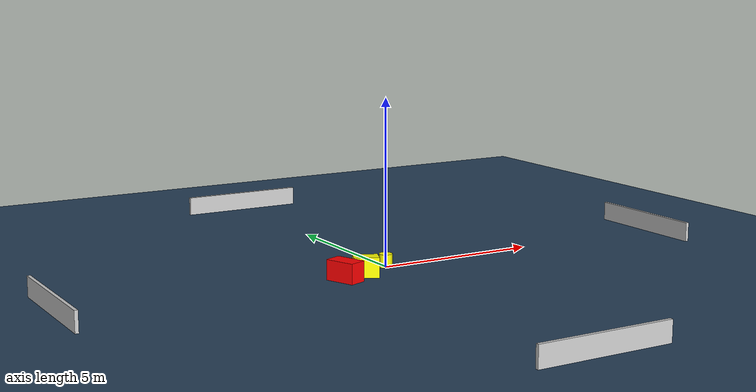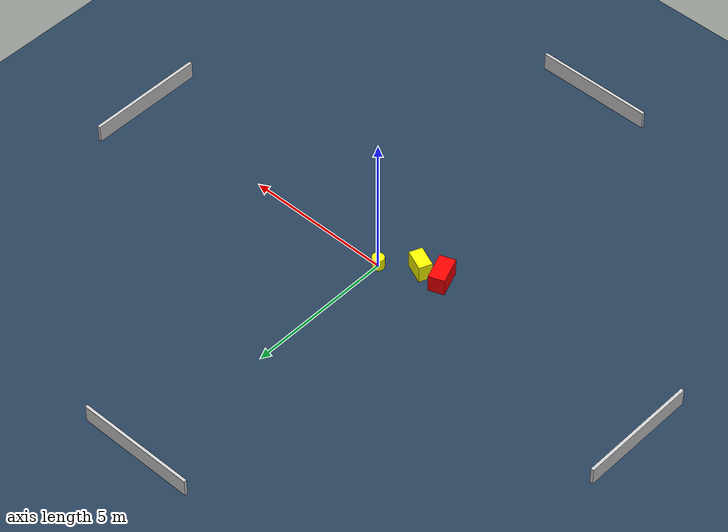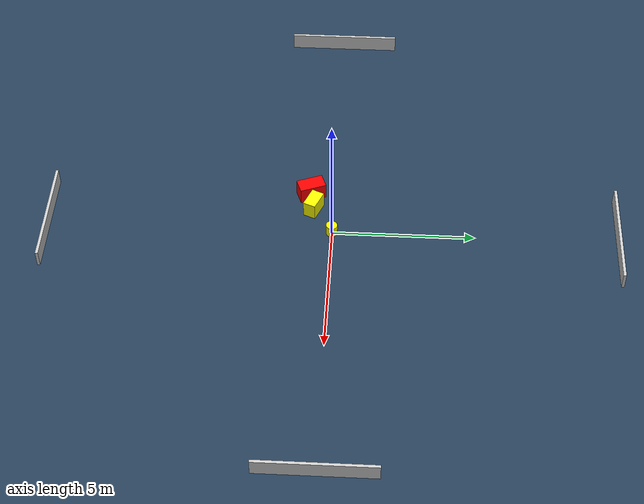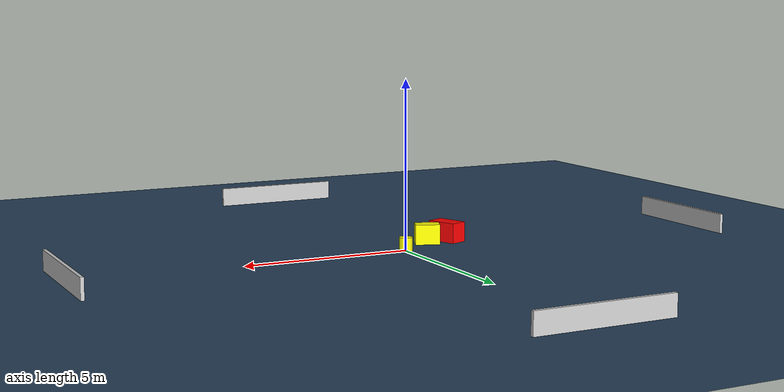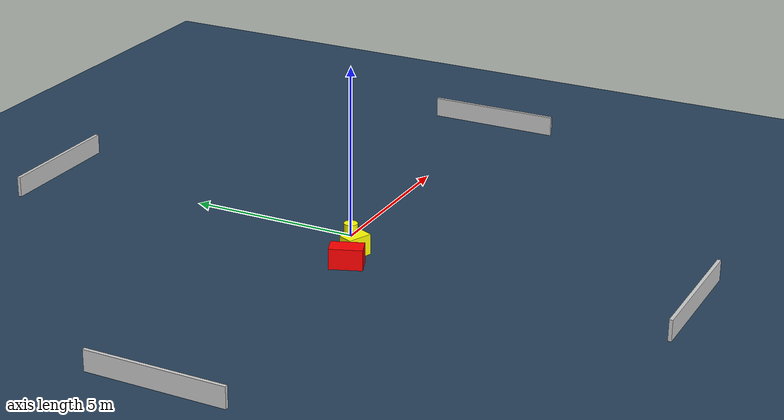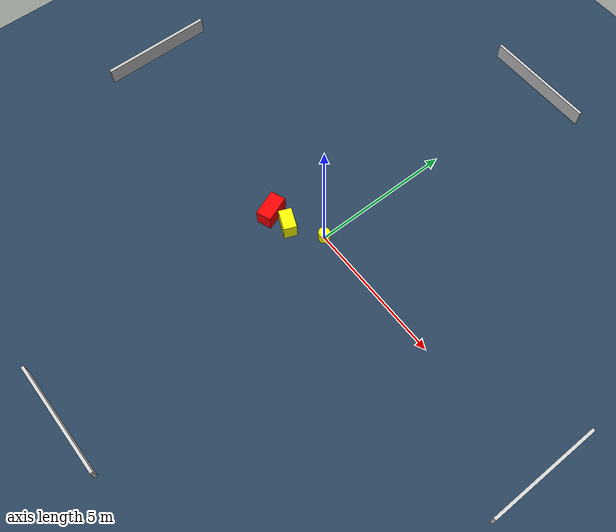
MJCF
<?xml version="1.0" ?>
<mujoco model="generated_environment">
  <option timestep="0.01" integrator="RK4" cone="elliptic"/>
  <default>
    <geom density="1"/>
  </default>
  <asset>
    <texture builtin="gradient" height="3072" name="skybox" rgb1="0.3 0.5 0.7" rgb2="0 0 0" type="skybox" width="512"/>
    <texture builtin="checker" height="300" name="groundplane" rgb1="0.2 0.3 0.4" rgb2="0.1 0.2 0.3" type="2d" width="300"/>
    <material name="groundplane" reflectance="0.2" texrepeat="5 5" texture="groundplane"/>
  </asset>
  <worldbody>
    <light dir="0 0 -1" directional="true" pos="0 0 1.5"/>
    <geom condim="3" friction="0.5 0.005 0.001" material="groundplane" name="floor" pos="0 0 0" size="0 0 0.05" type="plane"/>
    <body name="walls">
      <geom name="wall_1" condim="4" pos="-10.0 0.0 0.3" rgba="0.800000011920929 0.800000011920929 0.800000011920929 1.0" size="0.05 2.0 0.3" type="box"/>
      <geom name="wall_2" condim="4" pos="10.0 0.0 0.3" rgba="0.800000011920929 0.800000011920929 0.800000011920929 1.0" size="0.05 2.0 0.3" type="box"/>
      <geom name="wall_3" condim="4" pos="0.0 -10.0 0.3" rgba="0.800000011920929 0.800000011920929 0.800000011920929 1.0" size="2.0 0.05 0.3" type="box"/>
      <geom name="wall_4" condim="4" pos="0.0 10.0 0.3" rgba="0.800000011920929 0.800000011920929 0.800000011920929 1.0" size="2.0 0.05 0.3" type="box"/>
    </body>
    <body name="robot">
      <joint name="joint_x" type="slide" pos="0 0 0" axis="1 0 0"/>
      <joint name="joint_y" type="slide" pos="0 0 0" axis="0 1 0"/>
      <geom name="robot" type="cylinder" pos="0.0 0.0 0.2" size="0.2 0.2 0.0" mass="5.0" friction="1.0 0.005 0.0001" condim="4" rgba="1.0 1.0 0.0 1.0"/>
    </body>
    <body name="obstacle_1_movable">
      <geom name="obstacle_1_movable" condim="4" pos="-1.074411200894528 -0.6946649166642989 0.3" euler="0 0 67.07673287842265" friction="0.0 0.005 0.001" rgba="1.0 1.0 0.0 1.0" size="0.22548961054416575 0.3671153927004768 0.3" type="box" mass="0.1"/>
      <joint type="free"/>
    </body>
    <body name="obstacle_2_static">
      <geom name="obstacle_2_static" condim="4" pos="-1.817592613298207 -0.8224186435402993 0.3" euler="0 0 20.949493192768614" friction="0.0 0.005 0.001" rgba="1.0 0.0 0.0 1.0" size="0.2666213172877918 0.4709684167922671 0.3" type="box"/>
    </body>
  </worldbody>
  <actuator>
    <motor name="actuator_x" joint="joint_x" gear="1" ctrlrange="-1 1"/>
    <motor name="actuator_y" joint="joint_y" gear="1" ctrlrange="-1 1"/>
  </actuator>
</mujoco>
